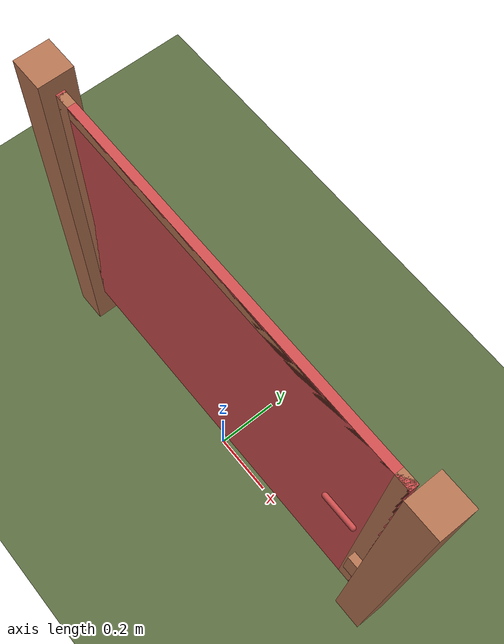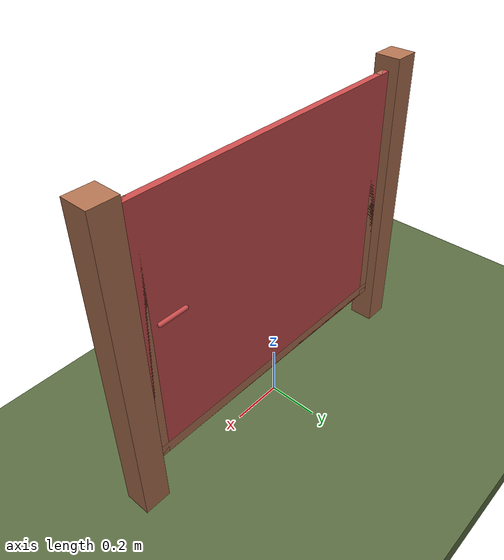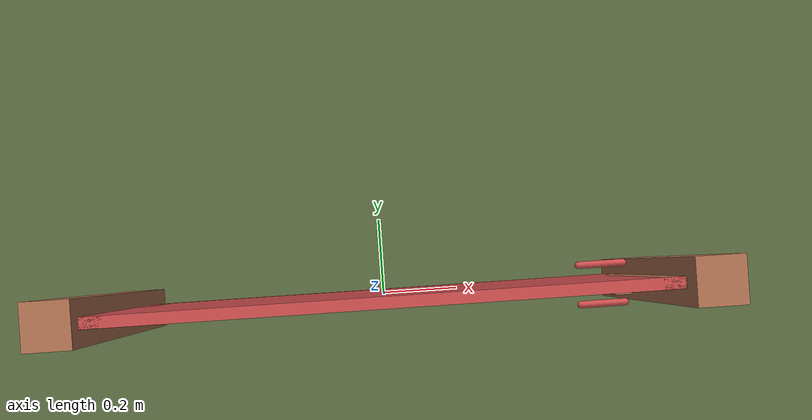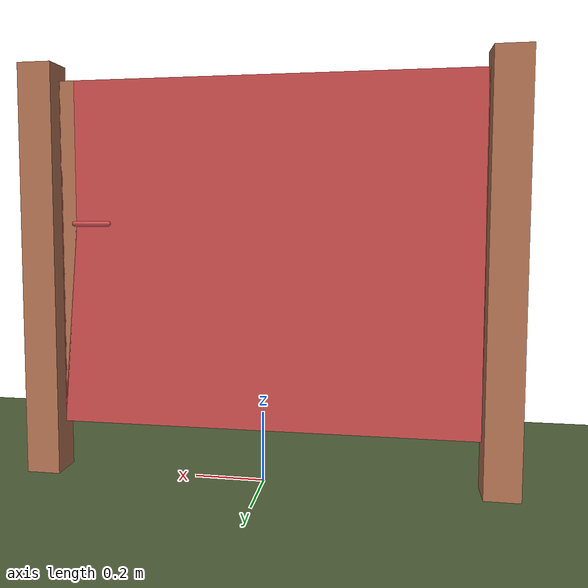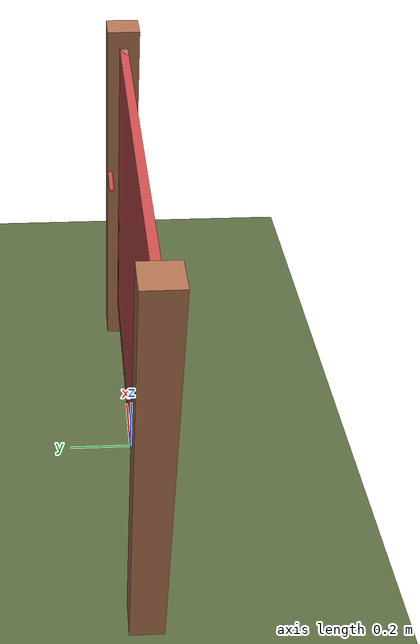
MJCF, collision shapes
<?xml version="1.0" ?>
<mujoco model="db0742_gate_swing_minimal">
  <compiler angle="radian" meshdir="../../hardware" texturedir="../../textures" autolimits="true" inertiafromgeom="false"/>
  <option timestep="0.002" integrator="implicitfast" cone="elliptic" impratio="10" noslip_iterations="3">
    <flag multiccd="enable"/>
  </option>
  <size memory="16M"/>
  <default>
    <geom condim="4" solref="0.005 1" solimp="0.95 0.99 0.001"/>
    <joint solreflimit="0.005 1" solimplimit="0.95 0.99 0.001"/>
    <tendon solreflimit="0.005 1"/>
    <equality solref="0.002 1"/>
  </default>
  <visual>
    <headlight ambient="0.4 0.4 0.4" diffuse="0.7 0.7 0.7" specular="0.2 0.2 0.2"/>
    <quality shadowsize="4096"/>
    <map znear="0.01" zfar="60"/>
  </visual>
  <asset>
    <mesh name="ring_cc5c941a8a" file="ring_cc5c941a8a.obj"/>
    <material name="mat_floor" rgba="0.35 0.42 0.25 1" specular="0.2" shininess="0.15" reflectance="0"/>
    <material name="mat_wall" rgba="0.78 0.76 0.7 1" specular="0.2" shininess="0.1" reflectance="0"/>
    <material name="mat_leaf" rgba="0.7 0.45 0.32 1" specular="0.2" shininess="0.4" reflectance="0"/>
    <material name="mat_hinge" rgba="0.45 0.3 0.22 1" specular="0.5" shininess="0.1" reflectance="0.2"/>
    <material name="mat_op_wrought_iron" rgba="0.08 0.08 0.09 1" specular="0.56" shininess="0.25" reflectance="0.24"/>
    <material name="mat_frame" rgba="0.7 0.45 0.32 1" specular="0.2" shininess="0.4" reflectance="0"/>
    <material name="mat_fence" rgba="0.7 0.45 0.32 1" specular="0.2" shininess="0.4" reflectance="0"/>
    <texture name="skybox" type="skybox" builtin="gradient" rgb1="0.6 0.7 0.85" rgb2="0.9 0.92 0.95" width="256" height="256"/>
  </asset>
  <worldbody>
    <light name="sun" pos="1.5 -2.5 4" dir="-0.3 0.5 -0.8" directional="true" diffuse="0.8 0.8 0.8" specular="0.3 0.3 0.3" castshadow="true"/>
    <light name="fill" pos="-1.5 2.5 3" dir="0.3 -0.5 -0.7" directional="true" diffuse="0.35 0.35 0.4" castshadow="false"/>
    <camera name="robot_view" pos="0 -1.875 1.035" xyaxes="1 0 0 0 0.26963 0.962964" fovy="52"/>
    <camera name="far_view" pos="0 1.875 1.035" xyaxes="-1 0 0 0 -0.26963 0.962964" fovy="52"/>
    <camera name="iso" pos="1.425 -1.575 1.335" xyaxes="0.741536 0.670913 0 -0.242917 0.268487 0.932151" fovy="46"/>
    <camera name="detail_handle" pos="0.672 -0.8445 1.02" xyaxes="0.97561 0.219512 0 -0.070934 0.315262 0.94635" fovy="38"/>
    <geom name="floor" type="box" size="6 6 0.05" pos="0 0 -0.05" material="mat_floor" group="0" contype="1" conaffinity="1" friction="0.8 0.005 0.0001" density="2400"/>
    <geom name="post_hinge" type="box" size="0.05 0.05 0.6" pos="-0.656 0 0.6" material="mat_frame" group="0" contype="1" conaffinity="1" friction="0.6 0.005 0.0001" density="350"/>
    <geom name="post_latch" type="box" size="0.05 0.05 0.6" pos="0.656 0 0.6" material="mat_frame" group="0" contype="1" conaffinity="1" friction="0.6 0.005 0.0001" density="350"/>
    <geom name="gate_stop" type="box" size="0.02 0.012 0.06" pos="0.586 -0.0245 0.4" material="mat_frame" group="0" contype="1" conaffinity="1" friction="0.6 0.005 0.0001" density="350"/>
    <site name="approach_point" pos="0 -1.5 0" quat="1 0 0 0" size="0.05" rgba="0.2 0.9 0.2 0.5" group="4"/>
    <site name="goal_point" pos="0 1.5 0" quat="1 0 0 0" size="0.05" rgba="0.2 0.9 0.2 0.5" group="4"/>
    <site name="door_plane_center" pos="0 0 0.51" quat="1 0 0 0" size="0.02" rgba="0.2 0.9 0.2 0.5" group="4"/>
    <body name="leaf" pos="-0.606 0 0">
      <inertial pos="0.633403 0 0.658497" mass="12.02" quat="0.706188 -0.706821 -0.029182 -0.029176" diaginertia="0.953761785 1.531197786 2.480352117"/>
      <joint name="leaf_hinge" type="hinge" axis="0 0 1" pos="0.003 0.05 0" limited="true" range="0 1.919862" damping="1.374492" frictionloss="5.913009" stiffness="5" springref="-1.537382" armature="0.02"/>
      <geom name="leaf_slab_col" type="box" size="0.6 0.0125 0.5" pos="0.603 0 0.65" material="mat_leaf" group="3" contype="1" conaffinity="1" rgba="0.8 0.3 0.3 0.25" friction="0.35 0.005 0.0001" density="1"/>
      <geom name="leaf_rail_b" type="box" size="0.6 0.0125 0.0225" pos="0.603 0 0.1725" material="mat_leaf" group="1" contype="0" conaffinity="0" density="1"/>
      <geom name="leaf_rail_t" type="box" size="0.6 0.0125 0.0225" pos="0.603 0 1.1275" material="mat_leaf" group="1" contype="0" conaffinity="0" density="1"/>
      <geom name="leaf_stile_h" type="box" size="0.0225 0.0125 0.5" pos="0.0255 0 0.65" material="mat_leaf" group="1" contype="0" conaffinity="0" density="1"/>
      <geom name="leaf_stile_l" type="box" size="0.0225 0.0125 0.5" pos="1.1805 0 0.65" material="mat_leaf" group="1" contype="0" conaffinity="0" density="1"/>
      <geom name="leaf_ring_pull_n" type="mesh" mesh="ring_cc5c941a8a" pos="1.098 -0.0125 0.8" quat="0.707107 0.707107 0 0" material="mat_op_wrought_iron" group="1" contype="0" conaffinity="0" density="3000"/>
      <geom name="leaf_ring_pull_col_n" type="capsule" size="0.008 0.05" pos="1.098 -0.0445 0.74" quat="0.707107 0 0.707107 0" material="mat_op_wrought_iron" group="3" contype="1" conaffinity="1" rgba="0.8 0.3 0.3 0.25" friction="0.7 0.01 0.0001" density="3000"/>
      <geom name="leaf_ring_pull_p" type="mesh" mesh="ring_cc5c941a8a" pos="1.098 0.0125 0.8" quat="-0.707107 0.707107 0 0" material="mat_op_wrought_iron" group="1" contype="0" conaffinity="0" density="3000"/>
      <geom name="leaf_ring_pull_col_p" type="capsule" size="0.008 0.05" pos="1.098 0.0445 0.74" quat="0.707107 0 0.707107 0" material="mat_op_wrought_iron" group="3" contype="1" conaffinity="1" rgba="0.8 0.3 0.3 0.25" friction="0.7 0.01 0.0001" density="3000"/>
      <site name="leaf_ring_pull_grip_n" pos="1.098 -0.0445 0.74" quat="1 0 0 0" size="0.012" rgba="0.2 0.9 0.2 0.5" group="4"/>
      <site name="leaf_ring_pull_grip_p" pos="1.098 0.0445 0.74" quat="1 0 0 0" size="0.012" rgba="0.2 0.9 0.2 0.5" group="4"/>
      <site name="leaf_edge_mid" pos="1.203 0 0.5" quat="1 0 0 0" size="0.02" rgba="0.2 0.9 0.2 0.5" group="4"/>
    </body>
  </worldbody>
  <sensor>
    <jointpos name="leaf_hinge_pos" joint="leaf_hinge"/>
    <jointvel name="leaf_hinge_vel" joint="leaf_hinge"/>
  </sensor>
</mujoco>
